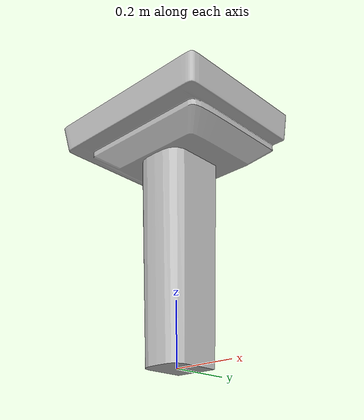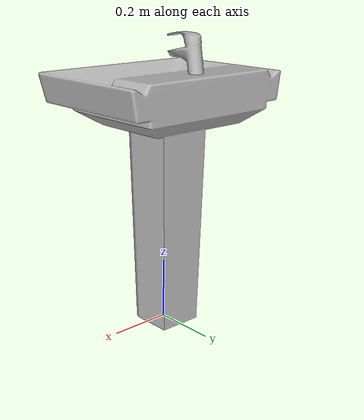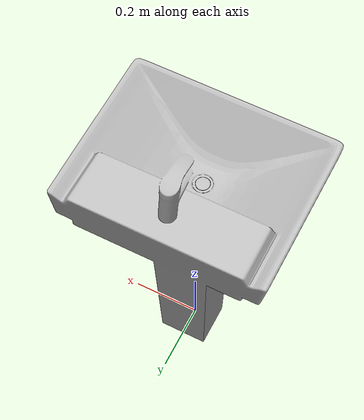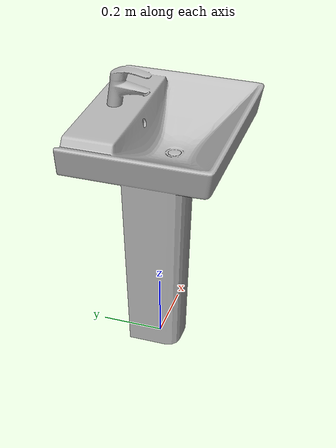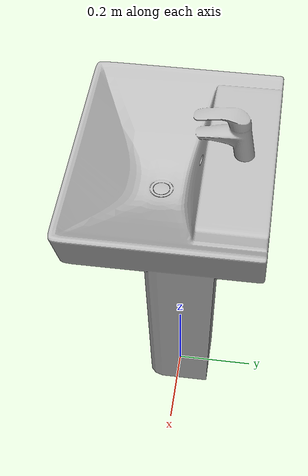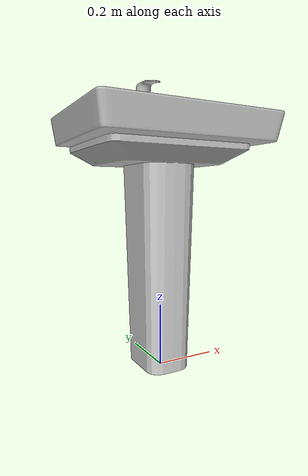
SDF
<?xml version='1.0'?>
<sdf version='1.6'>
  <model name='07_PedestalSink'>
    <link name='body'>
	  <inertial>
        <mass>10</mass>
        <pose frame=''>0 0 0 0 0 0</pose>
        <inertia>
          <ixx>0.939336666</ixx>
          <ixy>0</ixy>
          <ixz>0</ixz>
          <iyy>1.055525333</iyy>
          <iyz>0</iyz>
          <izz>0.48408333</izz>
        </inertia>
      </inertial>
      <pose frame=''>0 0 0 0 -0 0</pose>
      <self_collide>0</self_collide>
      <kinematic>0</kinematic>
      <gravity>1</gravity>
      <visual name='visual'>
        <geometry>
          <mesh>
            <uri>model://PedestalSink_303fe81afd0_lod0/meshes/visual_LowPoly_07_PedestalSink.dae</uri>
          </mesh>
        </geometry>
		<meta> <layer> 1 </layer></meta>
      </visual>
      <collision name='collision_0'>
        <laser_retro>0</laser_retro>
        <max_contacts>10</max_contacts>
        <pose frame=''>0 0 0 0 -0 0</pose>
        <geometry>
          <mesh>
            <uri>model://PedestalSink_303fe81afd0_lod0/meshes/collision_07_PedestalSink.dae</uri>
            <scale>1 1 1</scale>
          </mesh>
        </geometry>
		<surface>
          <friction>
            <ode>
              <mu>0.6</mu>
              <mu2>0.6</mu2>
              <fdir1>0 0 0</fdir1>
              <slip1>0</slip1>
              <slip2>0</slip2>
            </ode>
            <torsional>
              <coefficient>1</coefficient>
              <patch_radius>0</patch_radius>
              <surface_radius>0</surface_radius>
              <use_patch_radius>1</use_patch_radius>
              <ode>
                <slip>0</slip>
              </ode>
            </torsional>
          </friction>
        </surface>
      </collision>
    </link>
    <static>true</static>
  </model>
</sdf>
